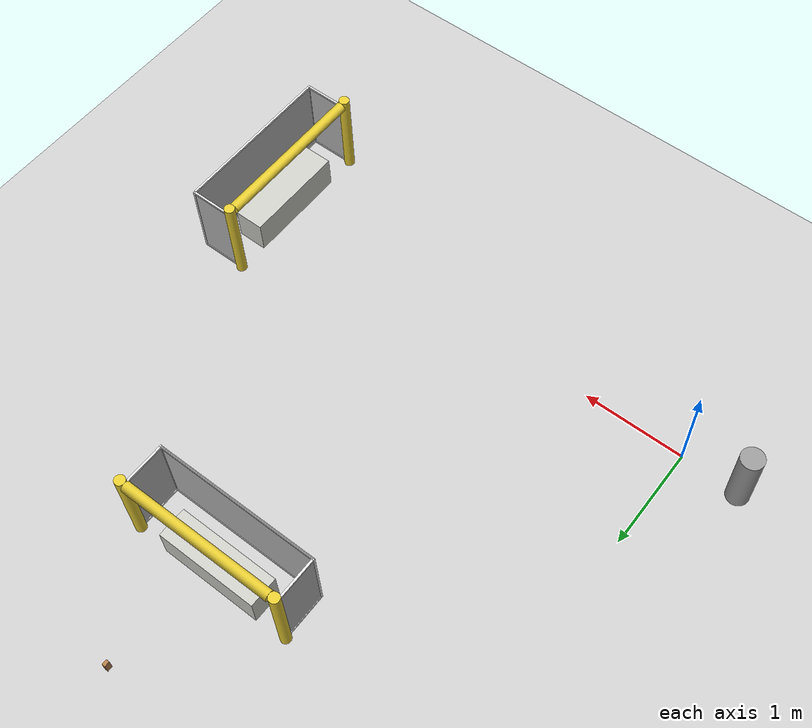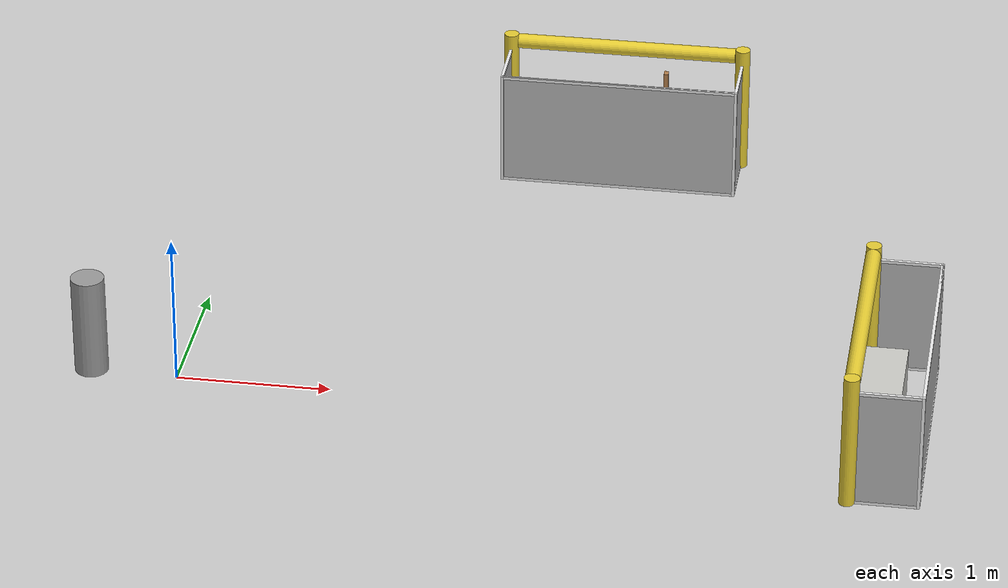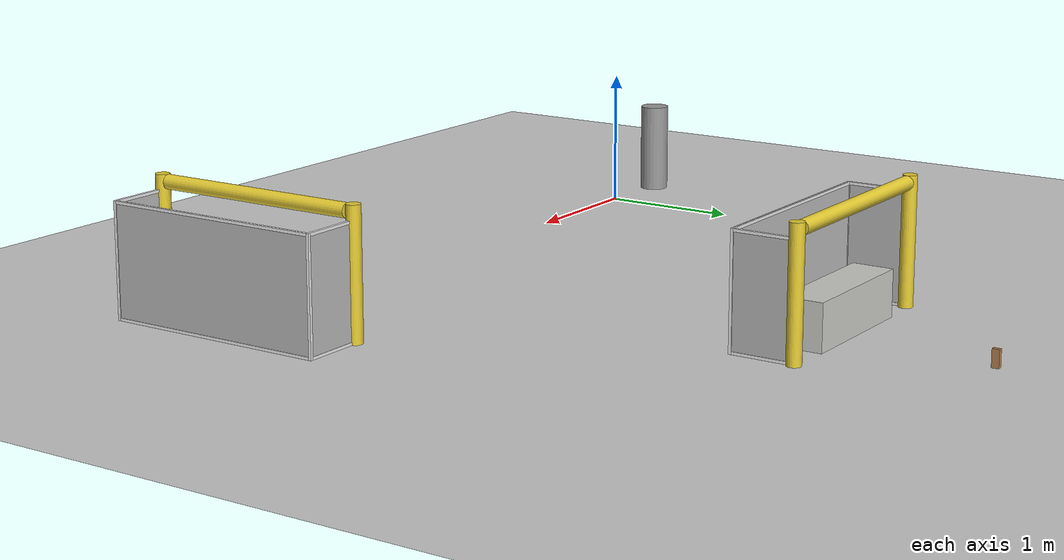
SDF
<sdf version="1.6">
 <world name="default">
  <model name="ground_plane">
   <static>1</static>
   <link name="link">
    <collision name="collision">
     <geometry><plane><normal>0 0 1</normal><size>100 100</size></plane></geometry>
     <surface>
      <contact><collide_bitmask>65535</collide_bitmask></contact>
      <friction><ode><mu>100</mu><mu2>50</mu2></ode></friction>
     </surface>
    </collision>
    <visual name="visual">
     <cast_shadows>0</cast_shadows>
     <geometry><plane><normal>0 0 1</normal><size>100 100</size></plane></geometry>
     <material>
      <script><uri>file://media/materials/scripts/gazebo.material</uri><name>Gazebo/Grey</name></script>
     </material>
    </visual>
   </link>
  </model>
  <model name="small_table">
   <link name="link">
    <inertial>
     <mass>0.815675</mass>
     <inertia>
      <ixx>0.075238</ixx>
      <ixy>0</ixy>
      <ixz>0</ixz>
      <iyy>0.0128756</iyy>
      <iyz>0</iyz>
      <izz>0.0735833</izz>
     </inertia>
    </inertial>
    <visual name="visual">
     <geometry><box><size>0.287297 1 0.326929</size></box></geometry>
     <material>
      <script><name>Gazebo/CeilingTiled</name><uri>file://media/materials/scripts/gazebo.material</uri></script>
      <shader type="pixel"><normal_map>__default__</normal_map></shader>
      <ambient>0.7 0.7 0.7 1</ambient>
      <diffuse>0.9 0.9 0.9 1</diffuse>
      <specular>0.01 0.01 0.01 1</specular>
      <emissive>0 0 0 1</emissive>
     </material>
    </visual>
    <collision name="collision">
     <geometry><box><size>0.287297 1 0.326929</size></box></geometry>
     <surface>
      <friction>
       <ode><mu>1</mu><mu2>1</mu2><fdir1>0 0 0</fdir1><slip1>0</slip1><slip2>0</slip2></ode>
       <torsional>
        <coefficient>1</coefficient>
        <patch_radius>0</patch_radius>
        <surface_radius>0</surface_radius>
        <use_patch_radius>1</use_patch_radius>
        <ode><slip>0</slip></ode>
       </torsional>
      </friction>
      <bounce><restitution_coefficient>0</restitution_coefficient><threshold>1e+06</threshold></bounce>
      <contact>
       <collide_without_contact>0</collide_without_contact>
       <collide_without_contact_bitmask>1</collide_without_contact_bitmask>
       <collide_bitmask>1</collide_bitmask>
       <ode>
        <soft_cfm>0</soft_cfm>
        <soft_erp>0.2</soft_erp>
        <kp>1e+13</kp>
        <kd>1</kd>
        <max_vel>0.01</max_vel>
        <min_depth>0</min_depth>
       </ode>
       <bullet>
        <split_impulse>1</split_impulse>
        <split_impulse_penetration_threshold>-0.01</split_impulse_penetration_threshold>
        <soft_cfm>0</soft_cfm>
        <soft_erp>0.2</soft_erp>
        <kp>1e+13</kp>
        <kd>1</kd>
       </bullet>
      </contact>
     </surface>
    </collision>
   </link>
   <static>0</static>
   <pose>4.49493 0.022415 0.163464 0 -0 0.000335</pose>
  </model>
  <model name="small_table_0">
   <link name="link">
    <inertial>
     <mass>1000</mass>
     <inertia><ixx>92.2402</ixx><ixy>0</ixy><ixz>0</ixz><iyy>15.7852</iyy><iyz>0</iyz><izz>90.2116</izz></inertia>
    </inertial>
    <visual name="visual">
     <geometry><box><size>0.287297 1 0.326929</size></box></geometry>
     <material>
      <script><name>Gazebo/CeilingTiled</name><uri>file://media/materials/scripts/gazebo.material</uri></script>
      <shader type="pixel"><normal_map>__default__</normal_map></shader>
      <ambient>0.7 0.7 0.7 1</ambient>
      <diffuse>0.9 0.9 0.9 1</diffuse>
      <specular>0.01 0.01 0.01 1</specular>
      <emissive>0 0 0 1</emissive>
     </material>
    </visual>
    <collision name="collision">
     <geometry><box><size>0.287297 1 0.326929</size></box></geometry>
     <surface>
      <friction>
       <ode><mu>1</mu><mu2>1</mu2><fdir1>0 0 0</fdir1><slip1>0</slip1><slip2>0</slip2></ode>
       <torsional>
        <coefficient>1</coefficient>
        <patch_radius>0</patch_radius>
        <surface_radius>0</surface_radius>
        <use_patch_radius>1</use_patch_radius>
        <ode><slip>0</slip></ode>
       </torsional>
      </friction>
      <bounce><restitution_coefficient>0</restitution_coefficient><threshold>1e+06</threshold></bounce>
      <contact>
       <collide_without_contact>0</collide_without_contact>
       <collide_without_contact_bitmask>1</collide_without_contact_bitmask>
       <collide_bitmask>1</collide_bitmask>
       <ode>
        <soft_cfm>0</soft_cfm>
        <soft_erp>0.2</soft_erp>
        <kp>1e+13</kp>
        <kd>1</kd>
        <max_vel>0.01</max_vel>
        <min_depth>0</min_depth>
       </ode>
       <bullet>
        <split_impulse>1</split_impulse>
        <split_impulse_penetration_threshold>-0.01</split_impulse_penetration_threshold>
        <soft_cfm>0</soft_cfm>
        <soft_erp>0.2</soft_erp>
        <kp>1e+13</kp>
        <kd>1</kd>
       </bullet>
      </contact>
     </surface>
    </collision>
   </link>
   <static>0</static>
   <pose>2.45054 3.20313 0.163464 0 -0 1.56878</pose>
  </model>
  <model name="RoboCup 2014 SPL Goal">
   <static>1</static>
   <link name="left_post">
    <pose>0 0.8 0.45 0 -0 0</pose>
    <collision name="collision">
     <geometry><cylinder><radius>0.05</radius><length>0.9</length></cylinder></geometry>
    </collision>
    <visual name="visual">
     <geometry><cylinder><radius>0.05</radius><length>0.9</length></cylinder></geometry>
     <material>
      <script><uri>file://media/materials/scripts/gazebo.material</uri><name>Gazebo/ZincYellow</name></script>
     </material>
    </visual>
   </link>
   <link name="left_support_horiz_lower">
    <pose>0.24 0.8 0.01 0 -0 0</pose>
    <collision name="collision"><geometry><box><size>0.38 0.02 0.02</size></box></geometry></collision>
    <visual name="visual">
     <geometry><box><size>0.38 0.02 0.02</size></box></geometry>
     <material>
      <script><uri>file://media/materials/scripts/gazebo.material</uri><name>Gazebo/White</name></script>
     </material>
    </visual>
   </link>
   <link name="left_support_horiz_upper">
    <pose>0.24 0.8 0.79 0 -0 0</pose>
    <collision name="collision"><geometry><box><size>0.38 0.02 0.02</size></box></geometry></collision>
    <visual name="visual">
     <geometry><box><size>0.38 0.02 0.02</size></box></geometry>
     <material>
      <script><uri>file://media/materials/scripts/gazebo.material</uri><name>Gazebo/White</name></script>
     </material>
    </visual>
   </link>
   <link name="left_support_vertical">
    <pose>0.44 0.8 0.4 3.14159 1.57079 3.14159</pose>
    <collision name="collision"><geometry><box><size>0.8 0.02 0.02</size></box></geometry></collision>
    <visual name="visual">
     <geometry><box><size>0.8 0.02 0.02</size></box></geometry>
     <material>
      <script><uri>file://media/materials/scripts/gazebo.material</uri><name>Gazebo/White</name></script>
     </material>
    </visual>
   </link>
   <link name="right_support_horiz_lower">
    <pose>0.24 -0.8 0.01 0 -0 0</pose>
    <collision name="collision"><geometry><box><size>0.38 0.02 0.02</size></box></geometry></collision>
    <visual name="visual">
     <geometry><box><size>0.38 0.02 0.02</size></box></geometry>
     <material>
      <script><uri>file://media/materials/scripts/gazebo.material</uri><name>Gazebo/White</name></script>
     </material>
    </visual>
   </link>
   <link name="right_support_horiz_upper">
    <pose>0.24 -0.8 0.79 0 -0 0</pose>
    <collision name="collision"><geometry><box><size>0.38 0.02 0.02</size></box></geometry></collision>
    <visual name="visual">
     <geometry><box><size>0.38 0.02 0.02</size></box></geometry>
     <material>
      <script><uri>file://media/materials/scripts/gazebo.material</uri><name>Gazebo/White</name></script>
     </material>
    </visual>
   </link>
   <link name="right_support_vertical">
    <pose>0.44 -0.8 0.4 3.14159 1.57079 3.14159</pose>
    <collision name="collision"><geometry><box><size>0.8 0.02 0.02</size></box></geometry></collision>
    <visual name="visual">
     <geometry><box><size>0.8 0.02 0.02</size></box></geometry>
     <material>
      <script><uri>file://media/materials/scripts/gazebo.material</uri><name>Gazebo/White</name></script>
     </material>
    </visual>
   </link>
   <link name="center_support_horiz_lower">
    <pose>0.44 0 0.01 3.14159 1.57079 3.14159</pose>
    <collision name="collision"><geometry><box><size>0.02 1.58 0.02</size></box></geometry></collision>
    <visual name="visual">
     <geometry><box><size>0.02 1.58 0.02</size></box></geometry>
     <material>
      <script><uri>file://media/materials/scripts/gazebo.material</uri><name>Gazebo/White</name></script>
     </material>
    </visual>
   </link>
   <link name="center_support_horiz_upper">
    <pose>0.44 0 0.79 3.14159 1.57079 3.14159</pose>
    <collision name="collision"><geometry><box><size>0.02 1.58 0.02</size></box></geometry></collision>
    <visual name="visual">
     <geometry><box><size>0.02 1.58 0.02</size></box></geometry>
     <material>
      <script><uri>file://media/materials/scripts/gazebo.material</uri><name>Gazebo/White</name></script>
     </material>
    </visual>
   </link>
   <link name="right_post">
    <pose>0 -0.8 0.45 0 -0 0</pose>
    <collision name="collision">
     <geometry><cylinder><radius>0.05</radius><length>0.9</length></cylinder></geometry>
    </collision>
    <visual name="visual">
     <geometry><cylinder><radius>0.05</radius><length>0.9</length></cylinder></geometry>
     <material>
      <script><uri>file://media/materials/scripts/gazebo.material</uri><name>Gazebo/ZincYellow</name></script>
     </material>
    </visual>
   </link>
   <link name="crossbar">
    <pose>0 0 0.85 1.57 1.57 0</pose>
    <collision name="collision">
     <geometry><cylinder><radius>0.05</radius><length>1.5</length></cylinder></geometry>
    </collision>
    <visual name="visual">
     <geometry><cylinder><radius>0.05</radius><length>1.5</length></cylinder></geometry>
     <material>
      <script><uri>file://media/materials/scripts/gazebo.material</uri><name>Gazebo/ZincYellow</name></script>
     </material>
    </visual>
   </link>
   <link name="center_net">
    <pose>0.44 0 0.4 0 -0 0</pose>
    <collision name="collision"><geometry><box><size>0.01 1.6 0.8</size></box></geometry></collision>
    <visual name="visual">
     <geometry><box><size>0.01 1.6 0.8</size></box></geometry>
     <material>
      <script>
       <uri>model://robocup09_spl_field/materials/scripts/</uri>
       <uri>model://robocup09_spl_field/materials/textures/</uri>
       <name>RoboCup/Net</name>
      </script>
     </material>
    </visual>
   </link>
   <link name="left_net">
    <pose>0.24 0.8 0.4 0 -0 0</pose>
    <collision name="collision"><geometry><box><size>0.38 0.01 0.76</size></box></geometry></collision>
    <visual name="visual">
     <geometry><box><size>0.38 0.01 0.76</size></box></geometry>
     <material>
      <script>
       <uri>model://robocup09_spl_field/materials/scripts/</uri>
       <uri>model://robocup09_spl_field/materials/textures/</uri>
       <name>RoboCup/Net</name>
      </script>
     </material>
    </visual>
   </link>
   <link name="right_net">
    <pose>0.24 -0.8 0.4 0 -0 0</pose>
    <collision name="collision"><geometry><box><size>0.38 0.01 0.76</size></box></geometry></collision>
    <visual name="visual">
     <geometry><box><size>0.38 0.01 0.76</size></box></geometry>
     <material>
      <script>
       <uri>model://robocup09_spl_field/materials/scripts/</uri>
       <uri>model://robocup09_spl_field/materials/textures/</uri>
       <name>RoboCup/Net</name>
      </script>
     </material>
    </visual>
   </link>
   <pose>4.37127 0.011795 0 0 -0 0</pose>
  </model>
  <model name="RoboCup 2014 SPL Goal_1">
   <static>1</static>
   <link name="left_post">
    <pose>0 0.8 0.45 0 -0 0</pose>
    <collision name="collision">
     <geometry><cylinder><radius>0.05</radius><length>0.9</length></cylinder></geometry>
    </collision>
    <visual name="visual">
     <geometry><cylinder><radius>0.05</radius><length>0.9</length></cylinder></geometry>
     <material>
      <script><uri>file://media/materials/scripts/gazebo.material</uri><name>Gazebo/ZincYellow</name></script>
     </material>
    </visual>
   </link>
   <link name="left_support_horiz_lower">
    <pose>0.24 0.8 0.01 0 -0 0</pose>
    <collision name="collision"><geometry><box><size>0.38 0.02 0.02</size></box></geometry></collision>
    <visual name="visual">
     <geometry><box><size>0.38 0.02 0.02</size></box></geometry>
     <material>
      <script><uri>file://media/materials/scripts/gazebo.material</uri><name>Gazebo/White</name></script>
     </material>
    </visual>
   </link>
   <link name="left_support_horiz_upper">
    <pose>0.24 0.8 0.79 0 -0 0</pose>
    <collision name="collision"><geometry><box><size>0.38 0.02 0.02</size></box></geometry></collision>
    <visual name="visual">
     <geometry><box><size>0.38 0.02 0.02</size></box></geometry>
     <material>
      <script><uri>file://media/materials/scripts/gazebo.material</uri><name>Gazebo/White</name></script>
     </material>
    </visual>
   </link>
   <link name="left_support_vertical">
    <pose>0.44 0.8 0.4 3.14159 1.57079 3.14159</pose>
    <collision name="collision"><geometry><box><size>0.8 0.02 0.02</size></box></geometry></collision>
    <visual name="visual">
     <geometry><box><size>0.8 0.02 0.02</size></box></geometry>
     <material>
      <script><uri>file://media/materials/scripts/gazebo.material</uri><name>Gazebo/White</name></script>
     </material>
    </visual>
   </link>
   <link name="right_support_horiz_lower">
    <pose>0.24 -0.8 0.01 0 -0 0</pose>
    <collision name="collision"><geometry><box><size>0.38 0.02 0.02</size></box></geometry></collision>
    <visual name="visual">
     <geometry><box><size>0.38 0.02 0.02</size></box></geometry>
     <material>
      <script><uri>file://media/materials/scripts/gazebo.material</uri><name>Gazebo/White</name></script>
     </material>
    </visual>
   </link>
   <link name="right_support_horiz_upper">
    <pose>0.24 -0.8 0.79 0 -0 0</pose>
    <collision name="collision"><geometry><box><size>0.38 0.02 0.02</size></box></geometry></collision>
    <visual name="visual">
     <geometry><box><size>0.38 0.02 0.02</size></box></geometry>
     <material>
      <script><uri>file://media/materials/scripts/gazebo.material</uri><name>Gazebo/White</name></script>
     </material>
    </visual>
   </link>
   <link name="right_support_vertical">
    <pose>0.44 -0.8 0.4 3.14159 1.57079 3.14159</pose>
    <collision name="collision"><geometry><box><size>0.8 0.02 0.02</size></box></geometry></collision>
    <visual name="visual">
     <geometry><box><size>0.8 0.02 0.02</size></box></geometry>
     <material>
      <script><uri>file://media/materials/scripts/gazebo.material</uri><name>Gazebo/White</name></script>
     </material>
    </visual>
   </link>
   <link name="center_support_horiz_lower">
    <pose>0.44 0 0.01 3.14159 1.57079 3.14159</pose>
    <collision name="collision"><geometry><box><size>0.02 1.58 0.02</size></box></geometry></collision>
    <visual name="visual">
     <geometry><box><size>0.02 1.58 0.02</size></box></geometry>
     <material>
      <script><uri>file://media/materials/scripts/gazebo.material</uri><name>Gazebo/White</name></script>
     </material>
    </visual>
   </link>
   <link name="center_support_horiz_upper">
    <pose>0.44 0 0.79 3.14159 1.57079 3.14159</pose>
    <collision name="collision"><geometry><box><size>0.02 1.58 0.02</size></box></geometry></collision>
    <visual name="visual">
     <geometry><box><size>0.02 1.58 0.02</size></box></geometry>
     <material>
      <script><uri>file://media/materials/scripts/gazebo.material</uri><name>Gazebo/White</name></script>
     </material>
    </visual>
   </link>
   <link name="right_post">
    <pose>0 -0.8 0.45 0 -0 0</pose>
    <collision name="collision">
     <geometry><cylinder><radius>0.05</radius><length>0.9</length></cylinder></geometry>
    </collision>
    <visual name="visual">
     <geometry><cylinder><radius>0.05</radius><length>0.9</length></cylinder></geometry>
     <material>
      <script><uri>file://media/materials/scripts/gazebo.material</uri><name>Gazebo/ZincYellow</name></script>
     </material>
    </visual>
   </link>
   <link name="crossbar">
    <pose>0 0 0.85 1.57 1.57 0</pose>
    <collision name="collision">
     <geometry><cylinder><radius>0.05</radius><length>1.5</length></cylinder></geometry>
    </collision>
    <visual name="visual">
     <geometry><cylinder><radius>0.05</radius><length>1.5</length></cylinder></geometry>
     <material>
      <script><uri>file://media/materials/scripts/gazebo.material</uri><name>Gazebo/ZincYellow</name></script>
     </material>
    </visual>
   </link>
   <link name="center_net">
    <pose>0.44 0 0.4 0 -0 0</pose>
    <collision name="collision"><geometry><box><size>0.01 1.6 0.8</size></box></geometry></collision>
    <visual name="visual">
     <geometry><box><size>0.01 1.6 0.8</size></box></geometry>
     <material>
      <script>
       <uri>model://robocup09_spl_field/materials/scripts/</uri>
       <uri>model://robocup09_spl_field/materials/textures/</uri>
       <name>RoboCup/Net</name>
      </script>
     </material>
    </visual>
   </link>
   <link name="left_net">
    <pose>0.24 0.8 0.4 0 -0 0</pose>
    <collision name="collision"><geometry><box><size>0.38 0.01 0.76</size></box></geometry></collision>
    <visual name="visual">
     <geometry><box><size>0.38 0.01 0.76</size></box></geometry>
     <material>
      <script>
       <uri>model://robocup09_spl_field/materials/scripts/</uri>
       <uri>model://robocup09_spl_field/materials/textures/</uri>
       <name>RoboCup/Net</name>
      </script>
     </material>
    </visual>
   </link>
   <link name="right_net">
    <pose>0.24 -0.8 0.4 0 -0 0</pose>
    <collision name="collision"><geometry><box><size>0.38 0.01 0.76</size></box></geometry></collision>
    <visual name="visual">
     <geometry><box><size>0.38 0.01 0.76</size></box></geometry>
     <material>
      <script>
       <uri>model://robocup09_spl_field/materials/scripts/</uri>
       <uri>model://robocup09_spl_field/materials/textures/</uri>
       <name>RoboCup/Net</name>
      </script>
     </material>
    </visual>
   </link>
   <pose>2.46374 3.31443 -0 0 0 -1.56937</pose>
  </model>
  <model name="unit_cylinder">
   <link name="link">
    <inertial>
     <mass>1</mass>
     <inertia><ixx>0.145833</ixx><ixy>0</ixy><ixz>0</ixz><iyy>0.145833</iyy><iyz>0</iyz><izz>0.125</izz></inertia>
    </inertial>
    <visual name="visual">
     <geometry><cylinder><radius>0.108142</radius><length>0.679054</length></cylinder></geometry>
     <material>
      <script><name>Gazebo/Grey</name><uri>file://media/materials/scripts/gazebo.material</uri></script>
     </material>
    </visual>
    <collision name="collision">
     <geometry><cylinder><radius>0.108142</radius><length>0.679054</length></cylinder></geometry>
     <surface>
      <friction>
       <ode><mu>1</mu><mu2>1</mu2><fdir1>0 0 0</fdir1><slip1>0</slip1><slip2>0</slip2></ode>
       <torsional>
        <coefficient>1</coefficient>
        <patch_radius>0</patch_radius>
        <surface_radius>0</surface_radius>
        <use_patch_radius>1</use_patch_radius>
        <ode><slip>0</slip></ode>
       </torsional>
      </friction>
      <bounce><restitution_coefficient>0</restitution_coefficient><threshold>1e+06</threshold></bounce>
      <contact>
       <collide_without_contact>0</collide_without_contact>
       <collide_without_contact_bitmask>1</collide_without_contact_bitmask>
       <collide_bitmask>1</collide_bitmask>
       <ode>
        <soft_cfm>0</soft_cfm>
        <soft_erp>0.2</soft_erp>
        <kp>1e+13</kp>
        <kd>1</kd>
        <max_vel>0.01</max_vel>
        <min_depth>0</min_depth>
       </ode>
       <bullet>
        <split_impulse>1</split_impulse>
        <split_impulse_penetration_threshold>-0.01</split_impulse_penetration_threshold>
        <soft_cfm>0</soft_cfm>
        <soft_erp>0.2</soft_erp>
        <kp>1e+13</kp>
        <kd>1</kd>
       </bullet>
      </contact>
     </surface>
    </collision>
   </link>
   <static>0</static>
   <pose>-0.564138 0.019756 0.339526 1e-06 -1e-06 0</pose>
  </model>
  <model name="Grasp_Rectangular">
   <link name="link">
    <inertial>
     <mass>1</mass>
     <inertia>
      <ixx>0.166667</ixx>
      <ixy>0</ixy>
      <ixz>0</ixz>
      <iyy>0.166667</iyy>
      <iyz>0</iyz>
      <izz>0.166667</izz>
     </inertia>
    </inertial>
    <visual name="visual">
     <geometry><box><size>0.031504 0.049777 0.122086</size></box></geometry>
     <material>
      <script><name>Gazebo/Wood</name><uri>file://media/materials/scripts/gazebo.material</uri></script>
      <shader type="vertex"><normal_map>__default__</normal_map></shader>
      <ambient>0.3 0.3 0.3 1</ambient>
      <diffuse>0.7 0.7 0.7 1</diffuse>
      <specular>0.01 0.01 0.01 1</specular>
      <emissive>0 0 0 1</emissive>
     </material>
    </visual>
    <collision name="collision">
     <geometry><box><size>0.031504 0.049777 0.122086</size></box></geometry>
     <surface>
      <friction>
       <ode><mu>1</mu><mu2>1</mu2><fdir1>0 0 0</fdir1><slip1>0</slip1><slip2>0</slip2></ode>
       <torsional>
        <coefficient>1</coefficient>
        <patch_radius>0</patch_radius>
        <surface_radius>0</surface_radius>
        <use_patch_radius>1</use_patch_radius>
        <ode><slip>0</slip></ode>
       </torsional>
      </friction>
      <bounce><restitution_coefficient>0</restitution_coefficient><threshold>1e+06</threshold></bounce>
      <contact>
       <collide_without_contact>0</collide_without_contact>
       <collide_without_contact_bitmask>1</collide_without_contact_bitmask>
       <collide_bitmask>1</collide_bitmask>
       <ode>
        <soft_cfm>0</soft_cfm>
        <soft_erp>0.2</soft_erp>
        <kp>1e+13</kp>
        <kd>1</kd>
        <max_vel>0.01</max_vel>
        <min_depth>0</min_depth>
       </ode>
       <bullet>
        <split_impulse>1</split_impulse>
        <split_impulse_penetration_threshold>-0.01</split_impulse_penetration_threshold>
        <soft_cfm>0</soft_cfm>
        <soft_erp>0.2</soft_erp>
        <kp>1e+13</kp>
        <kd>1</kd>
       </bullet>
      </contact>
     </surface>
    </collision>
   </link>
   <static>0</static>
   <pose>2.62129 4.3515 0.061043 -1e-06 -0 -2.4e-05</pose>
  </model>
 </world>
</sdf>
